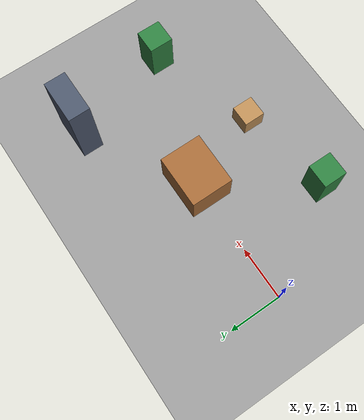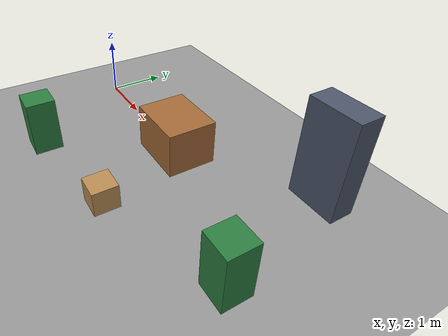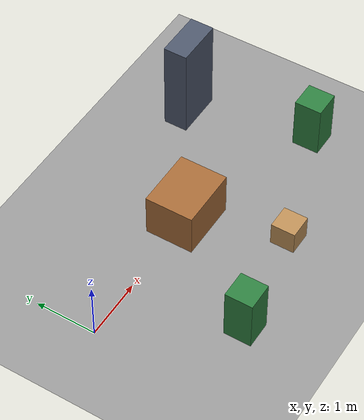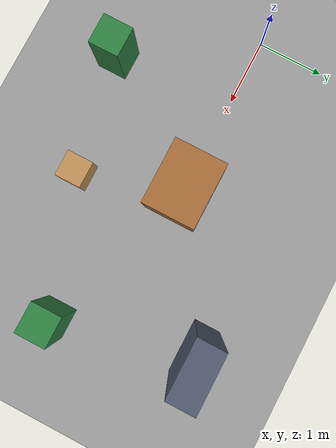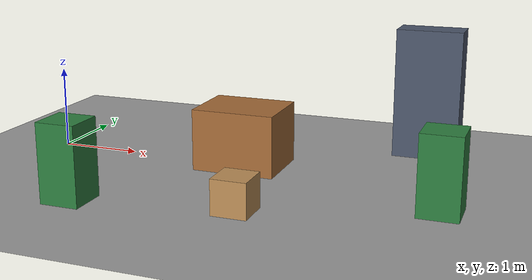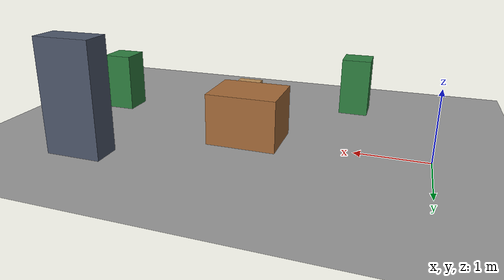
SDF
<?xml version="1.0" ?>
<sdf version="1.8">
  <world name="garden_world">

    <physics name="default_physics" type="ode">
      <max_step_size>0.004</max_step_size>
      <real_time_factor>1.0</real_time_factor>
      <real_time_update_rate>250</real_time_update_rate>
    </physics>

    <plugin filename="gz-sim-physics-system" name="gz::sim::systems::Physics"/>
    <plugin filename="gz-sim-user-commands-system" name="gz::sim::systems::UserCommands"/>
    <plugin filename="gz-sim-scene-broadcaster-system" name="gz::sim::systems::SceneBroadcaster"/>
    <plugin filename="gz-sim-sensors-system" name="gz::sim::systems::Sensors">
      <render_engine>ogre2</render_engine>
    </plugin>
    <plugin filename="gz-sim-imu-system" name="gz::sim::systems::Imu"/>
    <plugin filename="gz-sim-contact-system" name="gz::sim::systems::Contact"/>

    <light type="directional" name="sun">
      <cast_shadows>true</cast_shadows>
      <pose>0 0 10 0 0 0</pose>
      <diffuse>0.9 0.9 0.85 1</diffuse>
      <specular>0.3 0.3 0.3 1</specular>
      <direction>-0.5 0.1 -0.9</direction>
      <attenuation>
        <range>1000</range>
        <constant>0.9</constant>
        <linear>0.01</linear>
        <quadratic>0.001</quadratic>
      </attenuation>
    </light>
    <light type="directional" name="fill_light">
      <cast_shadows>false</cast_shadows>
      <pose>0 0 8 0 0 0</pose>
      <diffuse>0.3 0.3 0.35 1</diffuse>
      <specular>0.05 0.05 0.05 1</specular>
      <direction>0.5 -0.3 -0.7</direction>
    </light>

    <model name="ground_plane">
      <static>true</static>
      <link name="link">
        <collision name="collision">
          <geometry><plane><normal>0 0 1</normal><size>50 50</size></plane></geometry>
        </collision>
        <visual name="visual">
          <geometry><plane><normal>0 0 1</normal><size>50 50</size></plane></geometry>
          <material>
            <ambient>0.5 0.5 0.5 1</ambient>
            <diffuse>0.6 0.6 0.6 1</diffuse>
          </material>
        </visual>
      </link>
    </model>

    <!-- Table: 1.0 x 0.8 x 0.74, directly ahead of the robot -->
    <model name="table">
      <static>true</static>
      <pose>2.5 0.0 0.37 0 0 0</pose>
      <link name="link">
        <collision name="collision">
          <geometry><box><size>1.0 0.8 0.74</size></box></geometry>
        </collision>
        <visual name="visual">
          <geometry><box><size>1.0 0.8 0.74</size></box></geometry>
          <material>
            <ambient>0.55 0.35 0.18 1</ambient>
            <diffuse>0.65 0.42 0.22 1</diffuse>
          </material>
        </visual>
      </link>
    </model>

    <!-- Cabinet: 0.8 x 0.4 x 1.6 -->
    <model name="cabinet">
      <static>true</static>
      <pose>4.5 1.2 0.8 0 0 0</pose>
      <link name="link">
        <collision name="collision">
          <geometry><box><size>0.8 0.4 1.6</size></box></geometry>
        </collision>
        <visual name="visual">
          <geometry><box><size>0.8 0.4 1.6</size></box></geometry>
          <material>
            <ambient>0.25 0.28 0.35 1</ambient>
            <diffuse>0.3 0.34 0.42 1</diffuse>
          </material>
        </visual>
      </link>
    </model>

    <!-- Cardboard box: 0.4 x 0.4 x 0.4 -->
    <model name="cardboard_box">
      <static>true</static>
      <pose>3.0 -1.5 0.2 0 0 0</pose>
      <link name="link">
        <collision name="collision">
          <geometry><box><size>0.4 0.4 0.4</size></box></geometry>
        </collision>
        <visual name="visual">
          <geometry><box><size>0.4 0.4 0.4</size></box></geometry>
          <material>
            <ambient>0.62 0.47 0.28 1</ambient>
            <diffuse>0.74 0.56 0.34 1</diffuse>
          </material>
        </visual>
      </link>
    </model>

    <!-- Chair A: 0.45 x 0.45 x 0.9 -->
    <model name="chair_a">
      <static>true</static>
      <pose>1.2 -1.8 0.45 0 0 0</pose>
      <link name="link">
        <collision name="collision">
          <geometry><box><size>0.45 0.45 0.9</size></box></geometry>
        </collision>
        <visual name="visual">
          <geometry><box><size>0.45 0.45 0.9</size></box></geometry>
          <material>
            <ambient>0.15 0.4 0.2 1</ambient>
            <diffuse>0.18 0.5 0.25 1</diffuse>
          </material>
        </visual>
      </link>
    </model>

    <!-- Chair B: 0.45 x 0.45 x 0.9 -->
    <model name="chair_b">
      <static>true</static>
      <pose>5.0 -0.8 0.45 0 0 0</pose>
      <link name="link">
        <collision name="collision">
          <geometry><box><size>0.45 0.45 0.9</size></box></geometry>
        </collision>
        <visual name="visual">
          <geometry><box><size>0.45 0.45 0.9</size></box></geometry>
          <material>
            <ambient>0.15 0.4 0.2 1</ambient>
            <diffuse>0.18 0.5 0.25 1</diffuse>
          </material>
        </visual>
      </link>
    </model>

  </world>
</sdf>
